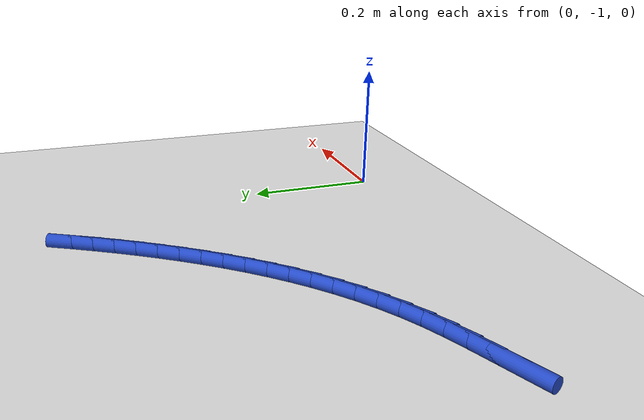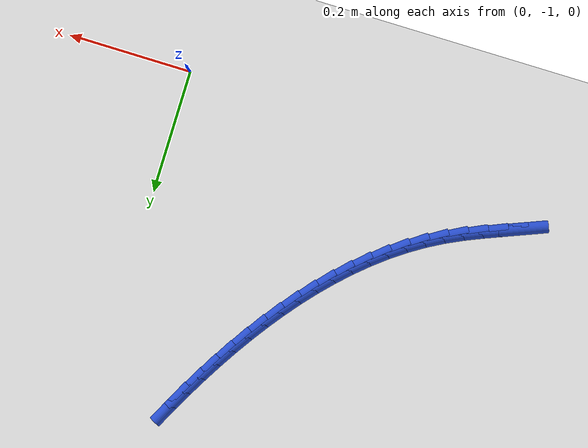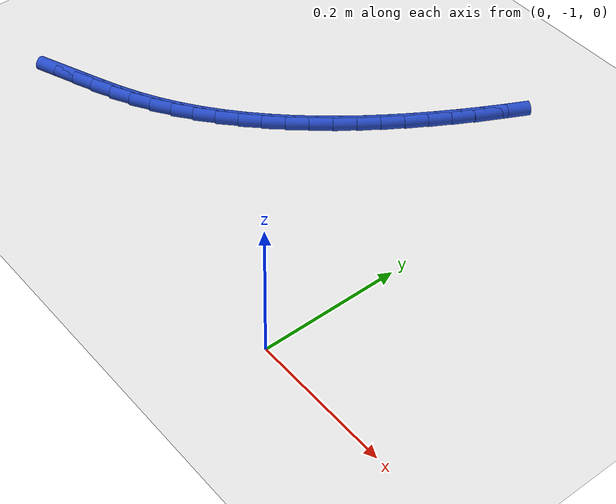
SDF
<sdf version="1.6">
 <world name="default">
  <model name="ground_plane">
   <static>1</static>
   <link name="link">
    <collision name="collision">
     <geometry><plane><normal>0 0 1</normal><size>100 100</size></plane></geometry>
     <surface><friction><ode><mu>100</mu><mu2>50</mu2></ode></friction></surface>
    </collision>
    <visual name="visual">
     <cast_shadows>0</cast_shadows>
     <geometry><plane><normal>0 0 1</normal><size>100 100</size></plane></geometry>
     <material>
      <script><uri>file://media/materials/scripts/gazebo.material</uri><name>Gazebo/WhiteGlow</name></script>
     </material>
    </visual>
   </link>
  </model>
  <model name="line">
   <link name="link_204">
    <pose>-0.5793712552419359 -0.9142084371253346 0.01 0 1.57 0.37917375660341013</pose>
    <collision name="collision">
     <geometry><cylinder><radius>0.01</radius><length>0.08</length></cylinder></geometry>
    </collision>
    <visual name="visual">
     <material>
      <script><name>Gazebo/Blue</name><uri>file://media/materials/scripts/gazebo.material</uri></script>
     </material>
     <geometry><cylinder><radius>0.01</radius><length>0.08</length></cylinder></geometry>
    </visual>
   </link>
   <link name="link_205">
    <pose>-0.5499058526373543 -0.902467800635456 0.01 0 1.57 0.38133147008574053</pose>
    <collision name="collision">
     <geometry><cylinder><radius>0.01</radius><length>0.08</length></cylinder></geometry>
    </collision>
    <visual name="visual">
     <material>
      <script><name>Gazebo/Blue</name><uri>file://media/materials/scripts/gazebo.material</uri></script>
     </material>
     <geometry><cylinder><radius>0.01</radius><length>0.08</length></cylinder></geometry>
    </visual>
   </link>
   <link name="link_206">
    <pose>-0.5205504315795326 -0.8906975266261522 0.01 0 1.57 0.40367555694789603</pose>
    <collision name="collision">
     <geometry><cylinder><radius>0.01</radius><length>0.08</length></cylinder></geometry>
    </collision>
    <visual name="visual">
     <material>
      <script><name>Gazebo/Blue</name><uri>file://media/materials/scripts/gazebo.material</uri></script>
     </material>
     <geometry><cylinder><radius>0.01</radius><length>0.08</length></cylinder></geometry>
    </visual>
   </link>
   <link name="link_207">
    <pose>-0.49159248926942345 -0.8783286466105221 0.01 0 1.57 0.4465256553620599</pose>
    <collision name="collision">
     <geometry><cylinder><radius>0.01</radius><length>0.08</length></cylinder></geometry>
    </collision>
    <visual name="visual">
     <material>
      <script><name>Gazebo/Blue</name><uri>file://media/materials/scripts/gazebo.material</uri></script>
     </material>
     <geometry><cylinder><radius>0.01</radius><length>0.08</length></cylinder></geometry>
    </visual>
   </link>
   <link name="link_208">
    <pose>-0.4633195215403919 -0.8647921950730855 0.01 0 1.57 0.5057726946892876</pose>
    <collision name="collision">
     <geometry><cylinder><radius>0.01</radius><length>0.08</length></cylinder></geometry>
    </collision>
    <visual name="visual">
     <material>
      <script><name>Gazebo/Blue</name><uri>file://media/materials/scripts/gazebo.material</uri></script>
     </material>
     <geometry><cylinder><radius>0.01</radius><length>0.08</length></cylinder></geometry>
    </visual>
   </link>
   <link name="link_209">
    <pose>-0.4359627713865697 -0.8496414298777191 0.01 0 1.57 0.5655200446254395</pose>
    <collision name="collision">
     <geometry><cylinder><radius>0.01</radius><length>0.08</length></cylinder></geometry>
    </collision>
    <visual name="visual">
     <material>
      <script><name>Gazebo/Blue</name><uri>file://media/materials/scripts/gazebo.material</uri></script>
     </material>
     <geometry><cylinder><radius>0.01</radius><length>0.08</length></cylinder></geometry>
    </visual>
   </link>
   <link name="link_210">
    <pose>-0.40954771494007586 -0.8328766889215101 0.01 0 1.57 0.6219492110185684</pose>
    <collision name="collision">
     <geometry><cylinder><radius>0.01</radius><length>0.08</length></cylinder></geometry>
    </collision>
    <visual name="visual">
     <material>
      <script><name>Gazebo/Blue</name><uri>file://media/materials/scripts/gazebo.material</uri></script>
     </material>
     <geometry><cylinder><radius>0.01</radius><length>0.08</length></cylinder></geometry>
    </visual>
   </link>
   <link name="link_211">
    <pose>-0.384052792683319 -0.8146005068286097 0.01 0 1.57 0.6749394960248</pose>
    <collision name="collision">
     <geometry><cylinder><radius>0.01</radius><length>0.08</length></cylinder></geometry>
    </collision>
    <visual name="visual">
     <material>
      <script><name>Gazebo/Blue</name><uri>file://media/materials/scripts/gazebo.material</uri></script>
     </material>
     <geometry><cylinder><radius>0.01</radius><length>0.08</length></cylinder></geometry>
    </visual>
   </link>
   <link name="link_212">
    <pose>-0.35945644509870706 -0.7949154182231688 0.01 0 1.57 0.7244622114091015</pose>
    <collision name="collision">
     <geometry><cylinder><radius>0.01</radius><length>0.08</length></cylinder></geometry>
    </collision>
    <visual name="visual">
     <material>
      <script><name>Gazebo/Blue</name><uri>file://media/materials/scripts/gazebo.material</uri></script>
     </material>
     <geometry><cylinder><radius>0.01</radius><length>0.08</length></cylinder></geometry>
    </visual>
   </link>
   <link name="link_213">
    <pose>-0.33573711266864875 -0.7739239577293381 0.01 0 1.57 0.7705614518218628</pose>
    <collision name="collision">
     <geometry><cylinder><radius>0.01</radius><length>0.08</length></cylinder></geometry>
    </collision>
    <visual name="visual">
     <material>
      <script><name>Gazebo/Blue</name><uri>file://media/materials/scripts/gazebo.material</uri></script>
     </material>
     <geometry><cylinder><radius>0.01</radius><length>0.08</length></cylinder></geometry>
    </visual>
   </link>
   <link name="link_214">
    <pose>-0.3128732358755521 -0.7517286599712686 0.01 0 1.57 0.8133351962483417</pose>
    <collision name="collision">
     <geometry><cylinder><radius>0.01</radius><length>0.08</length></cylinder></geometry>
    </collision>
    <visual name="visual">
     <material>
      <script><name>Gazebo/Blue</name><uri>file://media/materials/scripts/gazebo.material</uri></script>
     </material>
     <geometry><cylinder><radius>0.01</radius><length>0.08</length></cylinder></geometry>
    </visual>
   </link>
   <link name="link_215">
    <pose>-0.29084325520182486 -0.7284320595731099 0.01 0 1.57 0.852918322269408</pose>
    <collision name="collision">
     <geometry><cylinder><radius>0.01</radius><length>0.08</length></cylinder></geometry>
    </collision>
    <visual name="visual">
     <material>
      <script><name>Gazebo/Blue</name><uri>file://media/materials/scripts/gazebo.material</uri></script>
     </material>
     <geometry><cylinder><radius>0.01</radius><length>0.08</length></cylinder></geometry>
    </visual>
   </link>
   <link name="link_216">
    <pose>-0.26962561112987665 -0.7041366911590146 0.01 0 1.57 0.8894683102510214</pose>
    <collision name="collision">
     <geometry><cylinder><radius>0.01</radius><length>0.08</length></cylinder></geometry>
    </collision>
    <visual name="visual">
     <material>
      <script><name>Gazebo/Blue</name><uri>file://media/materials/scripts/gazebo.material</uri></script>
     </material>
     <geometry><cylinder><radius>0.01</radius><length>0.08</length></cylinder></geometry>
    </visual>
   </link>
   <link name="link_217">
    <pose>-0.2491987441421151 -0.6789450893531329 0.01 0 1.57 0.9231538214161973</pose>
    <collision name="collision">
     <geometry><cylinder><radius>0.01</radius><length>0.08</length></cylinder></geometry>
    </collision>
    <visual name="visual">
     <material>
      <script><name>Gazebo/Blue</name><uri>file://media/materials/scripts/gazebo.material</uri></script>
     </material>
     <geometry><cylinder><radius>0.01</radius><length>0.08</length></cylinder></geometry>
    </visual>
   </link>
   <link name="link_218">
    <pose>-0.2295410947209484 -0.6529597887796151 0.01 0 1.57 0.9541459621769448</pose>
    <collision name="collision">
     <geometry><cylinder><radius>0.01</radius><length>0.08</length></cylinder></geometry>
    </collision>
    <visual name="visual">
     <material>
      <script><name>Gazebo/Blue</name><uri>file://media/materials/scripts/gazebo.material</uri></script>
     </material>
     <geometry><cylinder><radius>0.01</radius><length>0.08</length></cylinder></geometry>
    </visual>
   </link>
   <link name="link_219">
    <pose>-0.210631103348785 -0.6262833240626127 0.01 0 1.57 0.9826118555145595</pose>
    <collision name="collision">
     <geometry><cylinder><radius>0.01</radius><length>0.08</length></cylinder></geometry>
    </collision>
    <visual name="visual">
     <material>
      <script><name>Gazebo/Blue</name><uri>file://media/materials/scripts/gazebo.material</uri></script>
     </material>
     <geometry><cylinder><radius>0.01</radius><length>0.08</length></cylinder></geometry>
    </visual>
   </link>
   <link name="link_220">
    <pose>-0.19244721050803318 -0.5990182298262761 0.01 0 1.57 1.0087100732495602</pose>
    <collision name="collision">
     <geometry><cylinder><radius>0.01</radius><length>0.08</length></cylinder></geometry>
    </collision>
    <visual name="visual">
     <material>
      <script><name>Gazebo/Blue</name><uri>file://media/materials/scripts/gazebo.material</uri></script>
     </material>
     <geometry><cylinder><radius>0.01</radius><length>0.08</length></cylinder></geometry>
    </visual>
   </link>
   <link name="link_221">
    <pose>-0.17496785668110118 -0.5712670406947561 0.01 0 1.57 1.0325874908259127</pose>
    <collision name="collision">
     <geometry><cylinder><radius>0.01</radius><length>0.08</length></cylinder></geometry>
    </collision>
    <visual name="visual">
     <material>
      <script><name>Gazebo/Blue</name><uri>file://media/materials/scripts/gazebo.material</uri></script>
     </material>
     <geometry><cylinder><radius>0.01</radius><length>0.08</length></cylinder></geometry>
    </visual>
   </link>
   <link name="link_222">
    <pose>-0.15817148235039735 -0.5431322912922038 0.01 0 1.57 1.0543771713279784</pose>
    <collision name="collision">
     <geometry><cylinder><radius>0.01</radius><length>0.08</length></cylinder></geometry>
    </collision>
    <visual name="visual">
     <material>
      <script><name>Gazebo/Blue</name><uri>file://media/materials/scripts/gazebo.material</uri></script>
     </material>
     <geometry><cylinder><radius>0.01</radius><length>0.08</length></cylinder></geometry>
    </visual>
   </link>
   <link name="link_223">
    <pose>-0.1420365279983296 -0.514716516242769 0.01 0 1.57 1.0742750824173908</pose>
    <collision name="collision">
     <geometry><cylinder><radius>0.01</radius><length>0.08</length></cylinder></geometry>
    </collision>
    <visual name="visual">
     <material>
      <script><name>Gazebo/Blue</name><uri>file://media/materials/scripts/gazebo.material</uri></script>
     </material>
     <geometry><cylinder><radius>0.01</radius><length>0.08</length></cylinder></geometry>
    </visual>
   </link>
   <link name="link_224">
    <pose>-0.12654313993707378 -0.48612006392069074 0.01 0 1.57 1.0943106909048805</pose>
    <collision name="collision">
     <geometry><cylinder><radius>0.01</radius><length>0.08</length></cylinder></geometry>
    </collision>
    <visual name="visual">
     <material>
      <script><name>Gazebo/Blue</name><uri>file://media/materials/scripts/gazebo.material</uri></script>
     </material>
     <geometry><cylinder><radius>0.01</radius><length>0.08</length></cylinder></geometry>
    </visual>
   </link>
  </model>
 </world>
</sdf>
